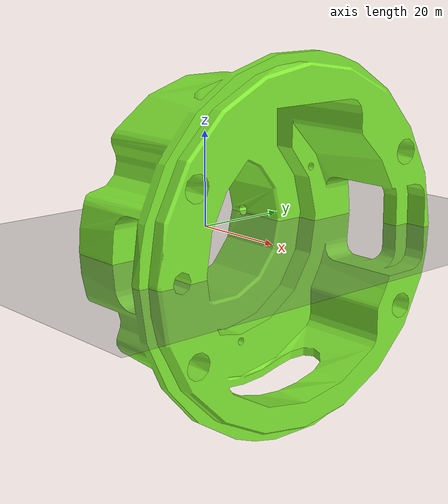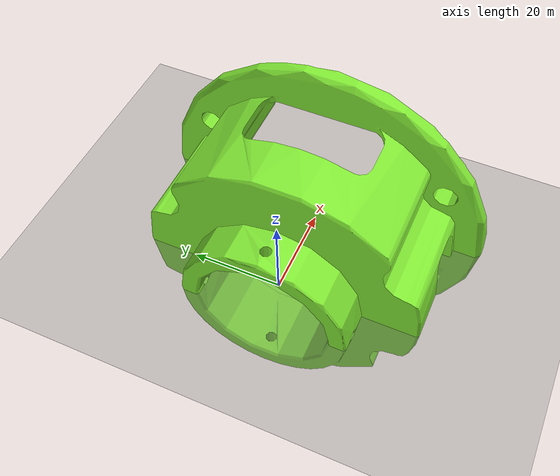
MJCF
<mujoco model="lift object scene">

  <option timestep="0.002" gravity="0 0 -9.81" noslip_iterations="3"/>

    <include file="robot.xml"/>

    <default>
        <geom solref="0.001 1" solimp="0.99 0.99 0.001"/>
    </default>

    <visual>
      <headlight diffuse="0.6 0.6 0.6" ambient="0.3 0.3 0.3" specular="0 0 0"/>
      <rgba haze="0.15 0.25 0.35 1"/>
      <global azimuth="120" elevation="-20"/>
    </visual>

    <asset>
      <texture type="skybox" builtin="gradient" rgb1="0.3 0.5 0.7" rgb2="0 0 0" width="512" height="3072"/>
      <texture type="2d" name="groundplane" builtin="checker" mark="edge" rgb1="0.2 0.3 0.4" rgb2="0.1 0.2 0.3" markrgb="0.8 0.8 0.8" width="300" height="300"/>
      <material name="groundplane" reflectance="0." texture="texplane" texrepeat="1 1" texuniform="true"/>
      <material name="cube_material" rgba="0.8 0.2 0.2 1"/>
      <material name="triangle_material" rgba="0.2 0.8 0.2 1"/>
      <material name="cylinder_material" rgba="0.2 0.2 0.8 1"/>

      <mesh name="triangle_mesh" file="triangle.stl" scale="0.001 0.001 0.001"/>
      <mesh name="cylinder_mesh" file="cylinder.stl" scale="0.001 0.001 0.001"/>
    </asset>

    <worldbody>
      <light pos="0 0 1.5" dir="0 0 -1" directional="true"/>
      <camera
          name="record_camera"
          pos="0.55 -0.45 0.5"
          xyaxes="0.65 0.76 0.00 -0.35 0.30 0.89"
      />
      <geom name="floor" size="0 0 0.05" type="plane" material="groundplane"/>

      <body name="target_body" pos="0. 0. 0.">
        <site name="target" pos="0.3 0.0 0.2" size=".01 .01 .01" rgba="1 0.0 0.0 1" type="sphere"/>
      </body>

      <body name="ee_frame_vis" mocap="true" pos="0 0 0" quat="1 0 0 0">
        <geom name="ee_frame_origin" type="sphere" size="0.004" rgba="1 1 1 0.95" contype="0" conaffinity="0"/>
        <geom name="ee_frame_x" type="capsule" fromto="0 0 0 0.05 0 0" size="0.0018" rgba="1 0.15 0.15 0.95" contype="0" conaffinity="0"/>
        <geom name="ee_frame_y" type="capsule" fromto="0 0 0 0 0.05 0" size="0.0018" rgba="0.15 1 0.15 0.95" contype="0" conaffinity="0"/>
        <geom name="ee_frame_z" type="capsule" fromto="0 0 0 0 0 0.05" size="0.0018" rgba="0.2 0.4 1 0.95" contype="0" conaffinity="0"/>
      </body>

      <body name="object_frame_vis" mocap="true" pos="0 0 0" quat="1 0 0 0">
        <geom name="object_frame_origin" type="sphere" size="0.0045" rgba="1 1 1 0.95" contype="0" conaffinity="0"/>
        <geom name="object_frame_x" type="capsule" fromto="0 0 0 0.045 0 0" size="0.0015" rgba="1 0.35 0.35 0.85" contype="0" conaffinity="0"/>
        <geom name="object_frame_y" type="capsule" fromto="0 0 0 0 0.045 0" size="0.0015" rgba="0.35 1 0.35 0.85" contype="0" conaffinity="0"/>
        <geom name="object_frame_z" type="capsule" fromto="0 0 0 0 0 0.045" size="0.0015" rgba="0.35 0.55 1 0.85" contype="0" conaffinity="0"/>
      </body>

      <body name="target_frame_vis" mocap="true" pos="0 0 0" quat="1 0 0 0">
        <geom name="target_frame_origin" type="sphere" size="0.005" rgba="1 0.9 0.1 0.95" contype="0" conaffinity="0"/>
        <geom name="target_frame_x" type="capsule" fromto="0 0 0 0.06 0 0" size="0.0014" rgba="1 0.45 0.45 0.7" contype="0" conaffinity="0"/>
        <geom name="target_frame_y" type="capsule" fromto="0 0 0 0 0.06 0" size="0.0014" rgba="0.45 1 0.45 0.7" contype="0" conaffinity="0"/>
        <geom name="target_frame_z" type="capsule" fromto="0 0 0 0 0 0.06" size="0.0014" rgba="0.45 0.6 1 0.7" contype="0" conaffinity="0"/>
      </body>

      <!-- BOX -->
      <body name="obj_box" pos="0.20 0.00 0.015">
        <freejoint name="obj_box_joint"/>
        <geom name="obj_box_geom"
              type="box"
              size="0.015 0.015 0.015"
              mass="0.03"
              material="cube_material"/>
        <site name="obj_box_ref" pos="0 0 0" size="0.01 0.01 0.01" rgba="1 0.5 0.5 1" type="sphere"/>
      </body>

      <!-- TRIANGLE -->

      <!-- CYLINDER -->

    </worldbody>

  </mujoco>

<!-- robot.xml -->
<mujoco model="mycobot">
    <option integrator="implicitfast" noslip_iterations="1"/>

    <compiler angle="radian" meshdir="meshes" autolimits="true" />

    <default>
        <joint armature="0.1" damping="1" axis="0 0 1" range="-2.8973 2.8973"/>
        <geom condim="4" contype="1" conaffinity="15" friction="0.9 0.2 0.2" solref="0.001 2" />
        <motor ctrllimited="true" />
        <equality solref="0.001 2" />
        <default class="visualgeom">
            <geom material="visualgeom" condim="1" contype="0" conaffinity="0" />
        </default>
    </default>

    <asset>
        <mesh name="link1" file="link1.stl" scale="0.001 0.001 0.001" />
        <mesh name="link2" file="link2.stl" />
        <mesh name="link3" file="link3.stl" />
        <mesh name="link4" file="link4.stl" />
        <mesh name="link5" file="link5.stl" />
        <mesh name="link6" file="link6.stl" />
        <mesh name="flange" file="flange.stl" />

        <mesh name="gripper_base" file="base_link2.stl" scale="0.001 0.001 0.001" />
        <mesh name="gripper_rail" file="gripper_rail_base1.stl" scale="0.001 0.001 0.001" />
        <mesh name="finger_left" file="gripper_finger_21.stl" scale="0.001 0.001 0.001" />
        <mesh name="finger_right" file="gripper_finger1.stl" scale="0.001 0.001 0.001" />

        <texture name="texplane" type="2d" builtin="checker" rgb1=".0 .0 .0" rgb2=".8 .8 .8" width="100" height="100" />
        <material name="matplane" reflectance="0." texture="texplane" texrepeat="1 1" texuniform="true" />
        <material name="visualgeom" rgba="0.5 0.9 0.2 1" />
        <material name="silver" rgba="0.7 0.7 0.7 1" />
    </asset>

    <worldbody>
        <light directional="true" diffuse="0.4 0.4 0.4" specular="0.1 0.1 0.1" pos="0 0 5.0" dir="0 0 -1" castshadow="false" />
        <light directional="true" diffuse="0.6 0.6 0.6" specular="0.2 0.2 0.2" pos="0 0 4" dir="0 0 -1" />
        <geom name="ground" type="plane" pos="0 0 0" size="100 100 0.001" quat="1 0 0 0" material="matplane" condim="3" conaffinity="15" />
        <camera name="fixed" pos="0 -3.0 0.5196343916714328" xyaxes="1 0 0 0 0 1" />
        <camera name="track" mode="trackcom" pos="0 -3.0 0.5196343916714328" xyaxes="1 0 0 0 0 1" />
        <body name="root" pos="0 0 0">
        <geom type="mesh" mesh="link1" contype="1" conaffinity="0" density="0" group="1" class="visualgeom" />
        <geom type="mesh" mesh="link1" />

        <body name="link2" pos="0 0 0.13956">
            <inertial pos="0 0 0" mass="1.5" diaginertia="0.01 0.01 0.01" />
            <joint name="link2_to_link1" axis="0 0 1" range="-2.9321 2.9321" />
            <geom pos="0 0 -0.06096" quat="0.707105 0 0 -0.707108" type="mesh" mesh="link2" class="visualgeom" />
            <geom type="mesh" mesh="link2" pos="0 0 -0.06096" quat="0.707105 0 0 -0.707108" />

            <body name="link3" pos="0 0 -0.001" quat="0.499998 0.500002 0.5 -0.5">
            <inertial pos="0 0 0" mass="1.2" diaginertia="0.008 0.008 0.008" />
            <joint name="link3_to_link2" axis="0 0 1" range="-2.3561 2.3561" />
            <geom pos="0 0 0.03256" quat="0.707105 0 -0.707108 0" type="mesh" mesh="link3" class="visualgeom" />
            <geom type="mesh" mesh="link3" pos="0 0 0.03256" quat="0.707105 0 -0.707108 0" />

                <body name="link4" pos="-0.1104 0 0">
                    <inertial pos="0 0 0" mass="1" diaginertia="0.005 0.005 0.005" />
                    <joint name="link4_to_link3" axis="0 0 1" range="-2.6179 2.6179" />
                    <geom pos="0 0 0.03056" quat="0.707105 0 -0.707108 0" type="mesh" mesh="link4" class="visualgeom" />
                    <geom type="mesh" mesh="link4" pos="0 0 0.03056" quat="0.707105 0 -0.707108 0" />
                        <body name="link5" pos="-0.096 0 0.06462" quat="0.707105 0 0 -0.707108">
                        <inertial pos="0 0 0" mass="0.8" diaginertia="0.003 0.003 0.003" />
                        <joint name="link5_to_link4" axis="0 0 1" range="-2.5307 2.5307" />
                        <geom pos="0 -0.001 -0.0345" quat="0.499998 0.500002 -0.5 0.5" type="mesh" mesh="link5" class="visualgeom" />
                        <geom type="mesh" mesh="link5" pos="0 -0.001 -0.0345" quat="0.499998 0.500002 -0.5 0.5" />

                        <body name="link6" pos="0 -0.07318 -0.001" quat="0.499998 0.5 -0.5 0.500002">
                            <inertial pos="0 0 0" mass="0.5" diaginertia="0.002 0.002 0.002" />
                            <joint name="link6_to_link5" axis="0 0 1" range="-2.8797 2.8797" />
                            <geom pos="0 0 -0.038" type="mesh" mesh="link6" class="visualgeom" />
                            <geom type="mesh" mesh="link6" pos="0 0 -0.038" />

                            <body name="link6_flange" pos="0 0.0456 0" quat="0.707105 -0.707108 0 0">
                            <site name="attachment_site" pos="0 0.0 0.075" size="0.005" rgba="1 0 0 1" group="1" quat="0 0.707 -0.707 0"/>
                            <inertial pos="0.000969617 3.10966e-05 0.0070873" quat="0.997515 -0.0019461 0.0697529 -0.00976369" mass="0.3" diaginertia="0.00103948 0.00103651 0.00100478" />
                            <joint name="link6output_to_link6" axis="0 0 1" range="-3.14 3.14159" />
                            <geom pos="0 0 -0.012" type="mesh" mesh="flange" class="visualgeom" />
                            <geom type="mesh" mesh="flange" pos="0 0 -0.012" />

                            <body name="gripper_base" pos="0 0 0" quat="1 0 0 0">
                                <geom type="mesh" mesh="gripper_base" material="silver" />

                                <body name="gripper_rail" pos="0 0 0" quat="1 0 0 0">
                                <geom type="mesh" mesh="gripper_rail" material="silver" />

                                <body name="finger_left" pos="0 0 0">
                                    <inertial pos="0 -0.017022 0.0224353" quat="0.947802 0.318861 0 0" mass="0.03" diaginertia="0.000211896 0.000211896 0.0002" />
                                    <joint name="Slider_10" type="slide" axis="1 0 0" range="-0.02 0.01" />
                                    <geom type="mesh" mesh="finger_left" pos="0 0 0" material="silver" contype="0" conaffinity="0" group="1"/>
                                    <geom name="finger_left_pad" type="box" size="0.002 0.015 0.01" pos="0.022 0.0 0.07" friction="2.0 0.05 0.0001" solref="0.02 1" contype="2" conaffinity="5" rgba="0.3 0.3 0.3 1" />
                                </body>

                                <body name="finger_right" pos="0 0 0">
                                    <inertial pos="0 0.01688 0.022582" quat="0.948936 -0.315467 0 0" mass="0.03" diaginertia="0.000211923 0.000211923 0.0002" />
                                    <joint name="Slider_11" type="slide" axis="1 0 0" range="-0.01 0.02" />
                                    <geom type="mesh" mesh="finger_right" pos="0 0 0" material="silver" contype="0" conaffinity="0" group="1"/>
                                    <geom name="finger_right_pad" type="box" size="0.002 0.015 0.01" pos="-0.022 0.0 0.07" friction="2.0 0.05 0.0001" solref="0.02 1" contype="2" conaffinity="5" rgba="0.3 0.3 0.3 1" />
                                </body>
                                </body>
                            </body>
                            </body>
                        </body>
                        </body>
                    </body>
                    </body>
                </body>
                </body>
    </worldbody>

  <actuator>
    <position name="link2_to_link1" joint="link2_to_link1" ctrllimited="true" ctrlrange="-2.9321 2.9321" kp="500" kv="50" />
    <position name="link3_to_link2" joint="link3_to_link2" ctrllimited="true" ctrlrange="-2.3561 2.3561" kp="500" kv="50" />
    <position name="link4_to_link3" joint="link4_to_link3" ctrllimited="true" ctrlrange="-2.6179 2.6179" kp="400" kv="40" />
    <position name="link5_to_link4" joint="link5_to_link4" ctrllimited="true" ctrlrange="-2.5307 2.5307" kp="300" kv="30" />
    <position name="link6_to_link5" joint="link6_to_link5" ctrllimited="true" ctrlrange="-2.8797 2.8797" kp="200" kv="20" />
    <position name="link6output_to_link6" joint="link6output_to_link6" ctrllimited="true" ctrlrange="-3.1416 3.1416" kp="10" />
    <position name="gripper_l" joint="Slider_10" ctrlrange="-0.02 0.02" kp="100" kv="20" />
    <position name="gripper_r" joint="Slider_11" ctrlrange="-0.02 0.02" kp="100" kv="20" />
  </actuator>

  <contact>
    <exclude body1="root" body2="link2"/>
    <exclude body1="link2" body2="link3"/>
    <exclude body1="link3" body2="link4"/>
    <exclude body1="link4" body2="link5"/>
    <exclude body1="link5" body2="link6"/>
    <exclude body1="link6_flange" body2="gripper_base"/>
    <exclude body1="gripper_base" body2="gripper_rail"/>
    <exclude body1="finger_left" body2="finger_right"/>
    <exclude body1="gripper_base" body2="finger_left"/>
    <exclude body1="gripper_base" body2="finger_right"/>
    <exclude body1="gripper_rail" body2="finger_left"/>
    <exclude body1="gripper_rail" body2="finger_right"/>
  </contact>
</mujoco>
